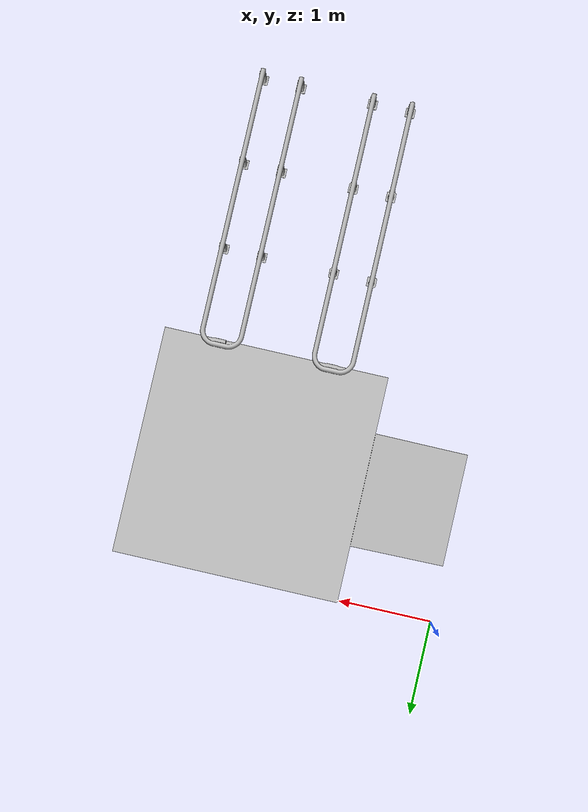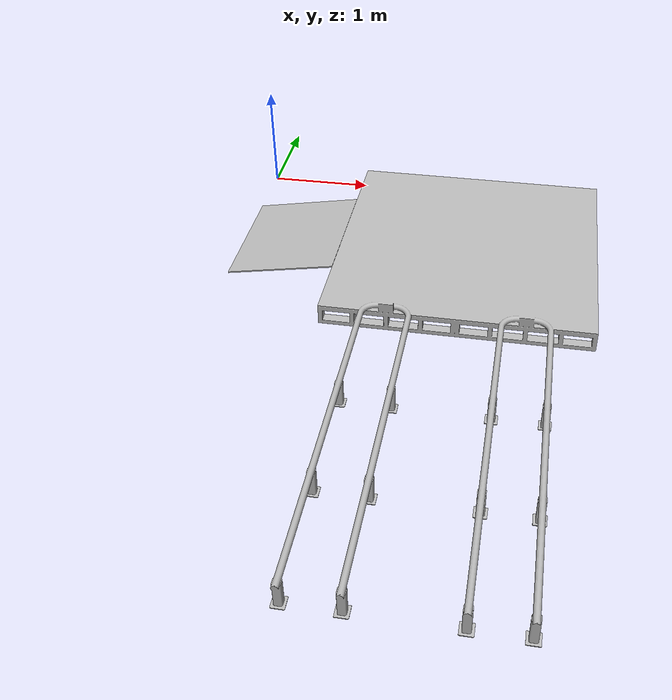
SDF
<?xml version="1.0" ?>

<sdf version="1.6">
  <world name="default">

    <include>
      <uri>model://sun</uri>
    </include>
    <!-- ground plane -->
    <model name="ground_plane">
      <static>true</static>
      <link name="link">
        <collision name="collision">
          <geometry>
            <plane>
              <normal>0 0 1</normal>
              <size>100 100</size>
            </plane>
          </geometry>
          <surface>
            <friction>
              <ode>
                <mu>100</mu>
                <mu2>50</mu2>
              </ode>
            </friction>
          </surface>
        </collision>
      </link>
    </model>

    <!-- AIS Lab -->
    <model name='AIS_lab'>
      <static>1</static>
      <link name='link'>
        <collision name='collision'>
          <geometry>
            <mesh>
              <uri>model://rail/rail.dae</uri>
              <scale>0.001 0.001 0.001</scale>
            </mesh>
          </geometry>
          <max_contacts>10</max_contacts>
          <surface>
            <contact>
              <ode/>
            </contact>
            <bounce/>
            <friction>
              <torsional>
                <ode/>
              </torsional>
              <ode/>
            </friction>
          </surface>
        </collision>
        <visual name='visual'>
          <geometry>
            <mesh>
              <uri>model://rail/rail.dae</uri>
              <scale>0.001 0.001 0.001</scale>
            </mesh>
          </geometry>
        </visual>
        <self_collide>0</self_collide>
        <kinematic>0</kinematic>
        <gravity>1</gravity>
        <enable_wind>0</enable_wind>
      </link>
      <pose frame=''>0 0 0 1.57 0 0</pose>
    </model>

  </world>
</sdf>
